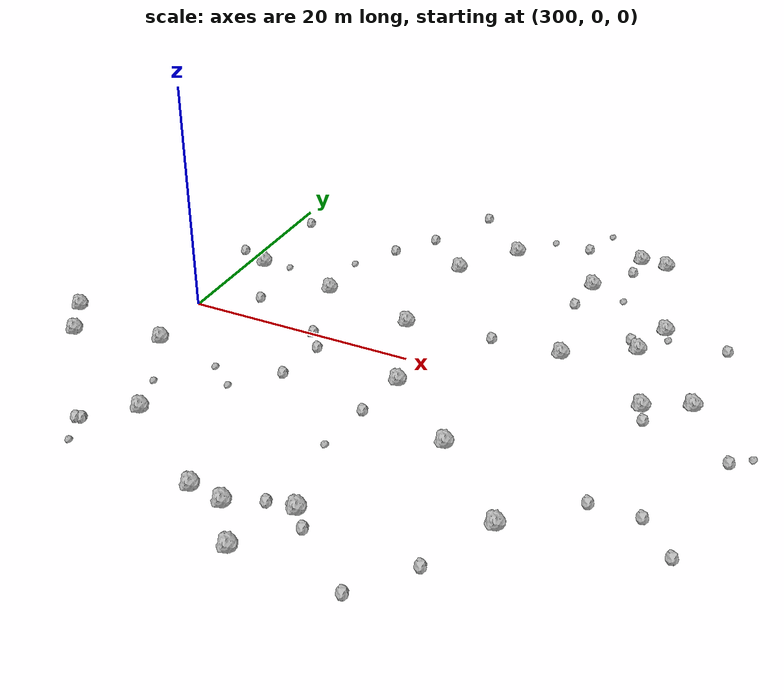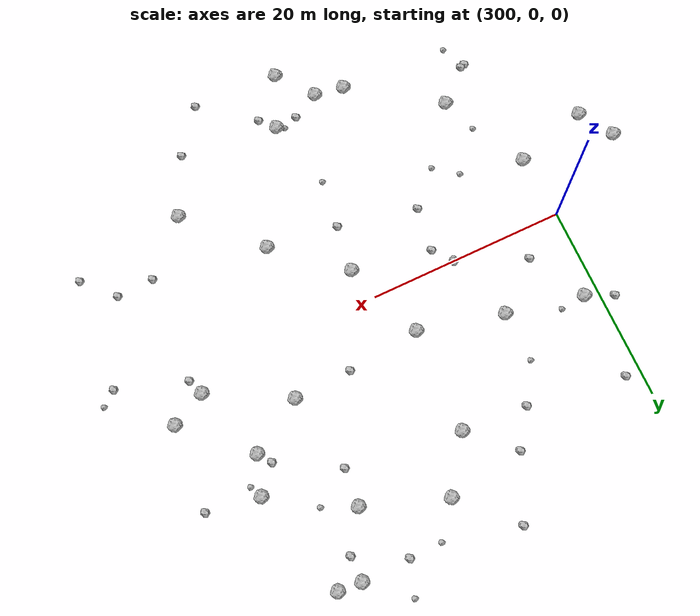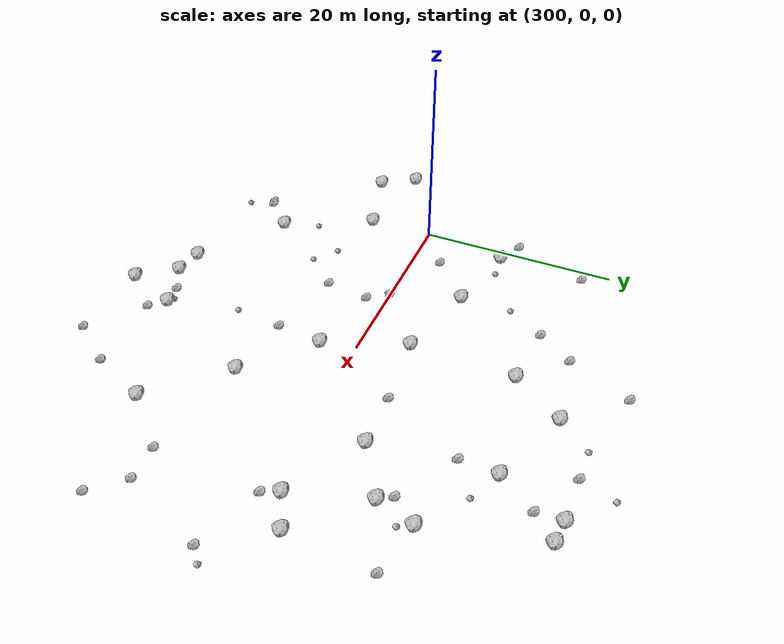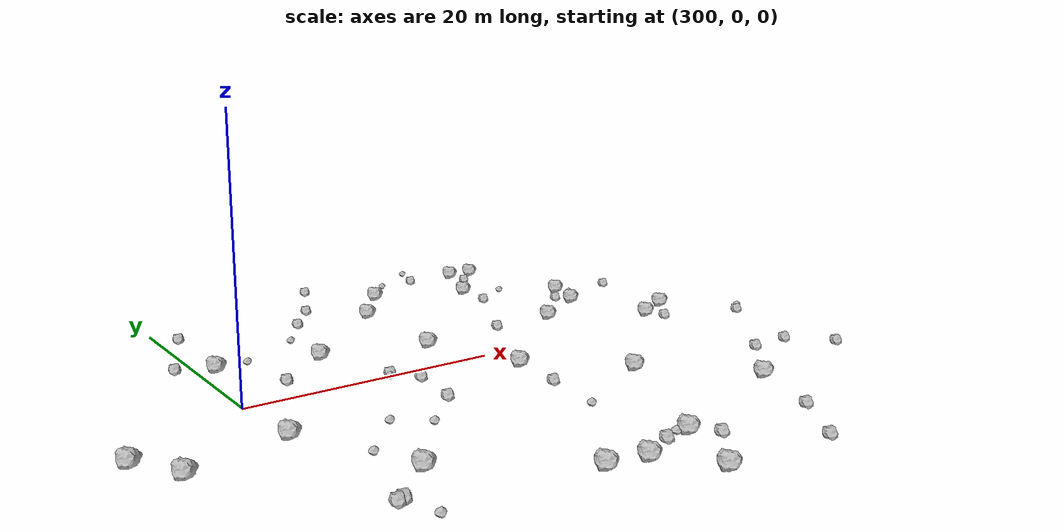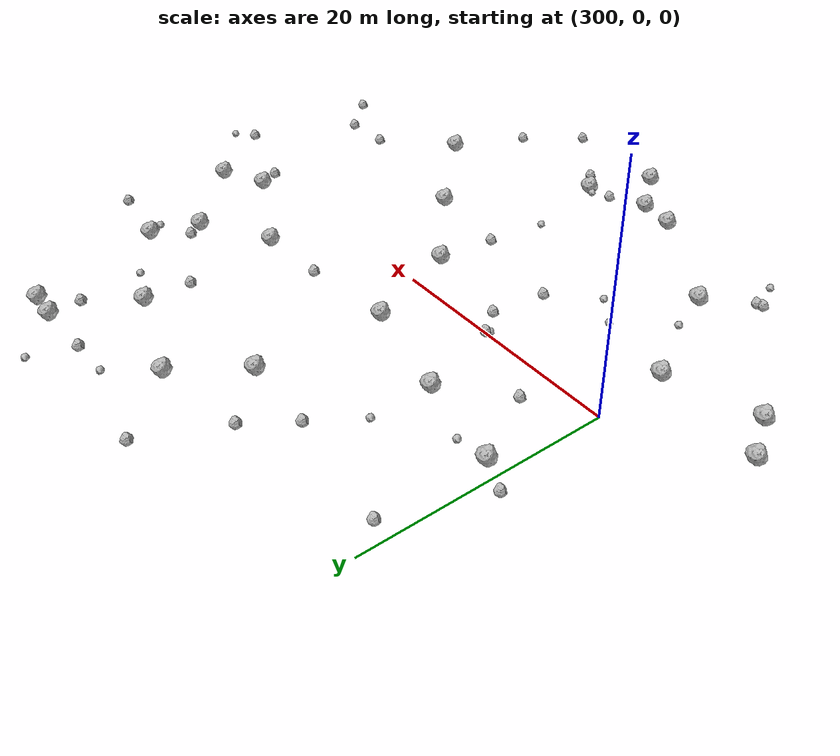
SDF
<sdf version="1.6">
 <world name="default">
  <include><uri>model://sun</uri></include>
  <model name="rock1_8_3">
   <include><uri>model://rock1</uri><pose>318.1845476149724 15.43193752091095 0.5 0 0 0</pose></include>
  </model>
  <model name="rock1_8_4">
   <include><uri>model://rock1</uri><pose>301.52255997603305 8.598242034407875 0.5 0 0 0</pose></include>
  </model>
  <model name="rock1_8_5">
   <include><uri>model://rock1</uri><pose>291.1196248167534 -5.041778218320104 0.5 0 0 0</pose></include>
  </model>
  <model name="rock1_8_6">
   <include><uri>model://rock1</uri><pose>336.6911350924221 9.093747876189802 0.5 0 0 0</pose></include>
  </model>
  <model name="rock1_8_7">
   <include><uri>model://rock1</uri><pose>342.64127278209963 3.249856520058053 0.5 0 0 0</pose></include>
  </model>
  <model name="rock1_8_8">
   <include><uri>model://rock1</uri><pose>304.8595432376359 -15.235382375383997 0.5 0 0 0</pose></include>
  </model>
  <model name="rock1_8_9">
   <include><uri>model://rock1</uri><pose>334.0336497948167 -15.788637708289775 0.5 0 0 0</pose></include>
  </model>
  <model name="rock1_8_10">
   <include><uri>model://rock1</uri><pose>331.2147816888221 5.78549517672181 0.5 0 0 0</pose></include>
  </model>
  <model name="rock1_8_11">
   <include><uri>model://rock1</uri><pose>321.3802890929479 -20.1766544745973 0.5 0 0 0</pose></include>
  </model>
  <model name="rock1_8_12">
   <include><uri>model://rock1</uri><pose>313.4669131961765 -21.23005852229804 0.5 0 0 0</pose></include>
  </model>
  <model name="rock1_8_13">
   <include><uri>model://rock1</uri><pose>337.99886647118626 12.949969688431516 0.5 0 0 0</pose></include>
  </model>
  <model name="rock1_8_14">
   <include><uri>model://rock1</uri><pose>321.9021777484436 20.675942222145693 0.5 0 0 0</pose></include>
  </model>
  <model name="rock1_8_15">
   <include><uri>model://rock1</uri><pose>319.17606072309485 -25.35293770978567 0.5 0 0 0</pose></include>
  </model>
  <model name="rock1_8_16">
   <include><uri>model://rock1</uri><pose>330.15487115167326 17.683559538667254 0.5 0 0 0</pose></include>
  </model>
  <model name="rock1_8_17">
   <include><uri>model://rock1</uri><pose>327.42573249762603 -9.12355425456759 0.5 0 0 0</pose></include>
  </model>
  <model name="rock1_8_18">
   <include><uri>model://rock1</uri><pose>316.4021043861686 -21.750358052195807 0.5 0 0 0</pose></include>
  </model>
  <model name="rock1_8_19">
   <include><uri>model://rock1</uri><pose>332.8263239571671 24.108297161893198 0.5 0 0 0</pose></include>
  </model>
  <model name="rock1_8_20">
   <include><uri>model://rock1</uri><pose>293.2372686468784 -8.432259863018736 0.5 0 0 0</pose></include>
  </model>
  <model name="rock1_8_21">
   <include><uri>model://rock1</uri><pose>320.92615652025705 -3.4263939916246144 0.5 0 0 0</pose></include>
  </model>
  <model name="rock1_8_22">
   <include><uri>model://rock1</uri><pose>335.2103435218636 23.927176409382085 0.5 0 0 0</pose></include>
  </model>
  <model name="rock1_8_23">
   <include><uri>model://rock1</uri><pose>339.09957287358134 1.5057782405208684 0.5 0 0 0</pose></include>
  </model>
  <model name="rock1_8_24">
   <include><uri>model://rock1</uri><pose>300.543931512576 -6.46227144105065 0.5 0 0 0</pose></include>
  </model>
  <model name="rock1_8_25">
   <include><uri>model://rock1</uri><pose>309.2857583489127 6.924898790382272 0.5 0 0 0</pose></include>
  </model>
  <model name="rock1_8_26">
   <include><uri>model://rock1</uri><pose>317.85009933596575 4.764580425604677 0.5 0 0 0</pose></include>
  </model>
  <model name="rock2_8_0">
   <include><uri>model://rock2</uri><pose>311.5092923472931 15.930582476894294 0.3 0 0 0</pose></include>
  </model>
  <model name="rock2_8_1">
   <include><uri>model://rock2</uri><pose>301.2366092012458 -18.263371296408693 0.3 0 0 0</pose></include>
  </model>
  <model name="rock2_8_2">
   <include><uri>model://rock2</uri><pose>301.5801629053688 17.43349891870632 0.3 0 0 0</pose></include>
  </model>
  <model name="rock2_8_3">
   <include><uri>model://rock2</uri><pose>327.8817111472473 24.075797703127563 0.3 0 0 0</pose></include>
  </model>
  <model name="rock2_8_4">
   <include><uri>model://rock2</uri><pose>327.86083526798893 -25.803965514143325 0.3 0 0 0</pose></include>
  </model>
  <model name="rock2_8_5">
   <include><uri>model://rock2</uri><pose>345.43239062983156 -13.82994827670726 0.3 0 0 0</pose></include>
  </model>
  <model name="rock2_8_6">
   <include><uri>model://rock2</uri><pose>342.65847549801623 -10.844459605508117 0.3 0 0 0</pose></include>
  </model>
  <model name="rock2_8_7">
   <include><uri>model://rock2</uri><pose>338.90788956719507 -10.97139329371873 0.3 0 0 0</pose></include>
  </model>
  <model name="rock2_8_8">
   <include><uri>model://rock2</uri><pose>298.74137796335464 9.850687677550056 0.3 0 0 0</pose></include>
  </model>
  <model name="rock2_8_9">
   <include><uri>model://rock2</uri><pose>346.61882306053235 -2.447302358526361 0.3 0 0 0</pose></include>
  </model>
  <model name="rock2_8_10">
   <include><uri>model://rock2</uri><pose>320.2566696409615 -8.123090102162664 0.3 0 0 0</pose></include>
  </model>
  <model name="rock2_8_11">
   <include><uri>model://rock2</uri><pose>301.68869483878575 -18.12936606170365 0.3 0 0 0</pose></include>
  </model>
  <model name="rock2_8_12">
   <include><uri>model://rock2</uri><pose>329.7789748690298 13.872737126741555 0.3 0 0 0</pose></include>
  </model>
  <model name="rock2_8_13">
   <include><uri>model://rock2</uri><pose>331.2365288711345 -21.53370335698353 0.3 0 0 0</pose></include>
  </model>
  <model name="rock2_8_14">
   <include><uri>model://rock2</uri><pose>325.301237003972 5.5743562172141665 0.3 0 0 0</pose></include>
  </model>
  <model name="rock2_8_15">
   <include><uri>model://rock2</uri><pose>322.69664133548076 -21.663436451386996 0.3 0 0 0</pose></include>
  </model>
  <model name="rock2_8_16">
   <include><uri>model://rock2</uri><pose>332.7721133822071 21.528312473496342 0.3 0 0 0</pose></include>
  </model>
  <model name="rock2_8_17">
   <include><uri>model://rock2</uri><pose>304.5775130962119 2.9504472728663558 0.3 0 0 0</pose></include>
  </model>
  <model name="rock2_8_18">
   <include><uri>model://rock2</uri><pose>335.77725893472393 10.417139769357512 0.3 0 0 0</pose></include>
  </model>
  <model name="rock2_8_19">
   <include><uri>model://rock2</uri><pose>314.0147015636384 19.52974748677623 0.3 0 0 0</pose></include>
  </model>
  <model name="rock2_8_20">
   <include><uri>model://rock2</uri><pose>311.4612232553094 0.04358227819716021 0.3 0 0 0</pose></include>
  </model>
  <model name="rock2_8_21">
   <include><uri>model://rock2</uri><pose>316.94438841927047 25.927201128542606 0.3 0 0 0</pose></include>
  </model>
  <model name="rock2_8_22">
   <include><uri>model://rock2</uri><pose>312.91733861580445 -1.9304833791161222 0.3 0 0 0</pose></include>
  </model>
  <model name="rock2_8_23">
   <include><uri>model://rock2</uri><pose>343.39042789482136 12.049471434139086 0.3 0 0 0</pose></include>
  </model>
  <model name="rock2_8_24">
   <include><uri>model://rock2</uri><pose>339.700003674202 -0.13894201590020927 0.3 0 0 0</pose></include>
  </model>
  <model name="rock2_8_25">
   <include><uri>model://rock2</uri><pose>312.280787071575 -6.388184313146894 0.3 0 0 0</pose></include>
  </model>
  <model name="rock2_8_26">
   <include><uri>model://rock2</uri><pose>319.1452860005776 -20.382723578970882 0.3 0 0 0</pose></include>
  </model>
  <model name="rock3_8_0">
   <include><uri>model://rock3</uri><pose>338.52981376731964 11.655827570545561 0.2 0 0 0</pose></include>
  </model>
  <model name="rock3_8_1">
   <include><uri>model://rock3</uri><pose>304.02886064825697 8.85467454174551 0.2 0 0 0</pose></include>
  </model>
  <model name="rock3_8_2">
   <include><uri>model://rock3</uri><pose>309.1166562888261 -9.6705780401828 0.2 0 0 0</pose></include>
  </model>
  <model name="rock3_8_3">
   <include><uri>model://rock3</uri><pose>303.5089257974115 -11.672176293506421 0.2 0 0 0</pose></include>
  </model>
  <model name="rock3_8_4">
   <include><uri>model://rock3</uri><pose>348.0743643360358 -1.3180427594078807 0.2 0 0 0</pose></include>
  </model>
  <model name="rock3_8_5">
   <include><uri>model://rock3</uri><pose>306.82174583556446 -7.893299017046434 0.2 0 0 0</pose></include>
  </model>
  <model name="rock3_8_6">
   <include><uri>model://rock3</uri><pose>320.6057072360803 -19.84408984410241 0.2 0 0 0</pose></include>
  </model>
  <model name="rock3_8_7">
   <include><uri>model://rock3</uri><pose>309.10282928414284 12.08800307397513 0.2 0 0 0</pose></include>
  </model>
  <model name="rock3_8_8">
   <include><uri>model://rock3</uri><pose>319.5995452954889 -13.026958603205532 0.2 0 0 0</pose></include>
  </model>
  <model name="rock3_8_9">
   <include><uri>model://rock3</uri><pose>329.0254197427151 27.552630597889816 0.2 0 0 0</pose></include>
  </model>
  <model name="rock3_8_10">
   <include><uri>model://rock3</uri><pose>302.41420385663326 -20.656823004892658 0.2 0 0 0</pose></include>
  </model>
  <model name="rock3_8_11">
   <include><uri>model://rock3</uri><pose>311.26945369360914 -0.285640072033285 0.2 0 0 0</pose></include>
  </model>
  <model name="rock3_8_12">
   <include><uri>model://rock3</uri><pose>333.3879145409716 16.210648829129724 0.2 0 0 0</pose></include>
  </model>
  <model name="rock3_8_13">
   <include><uri>model://rock3</uri><pose>324.52131247852225 24.00944634895029 0.2 0 0 0</pose></include>
  </model>
 </world>
</sdf>
